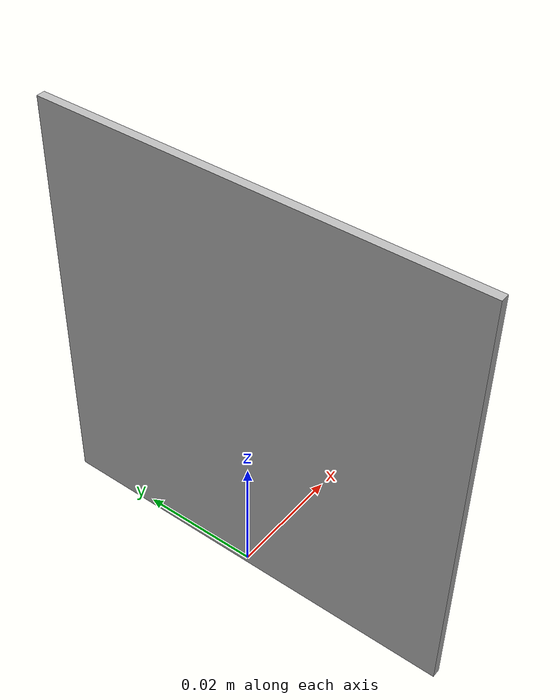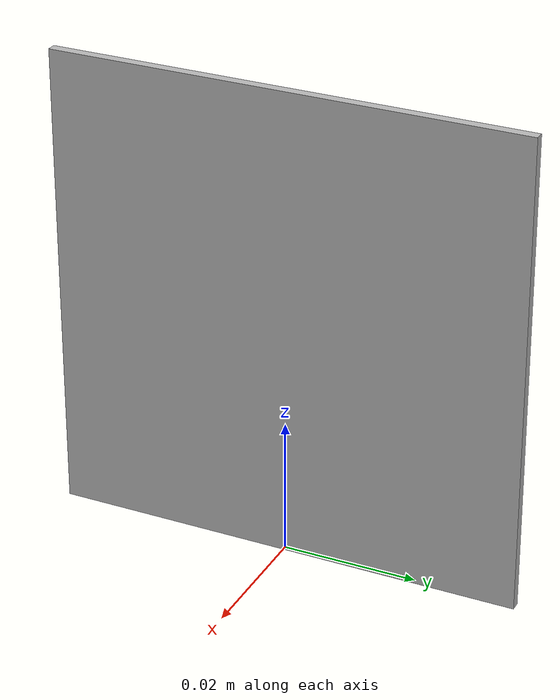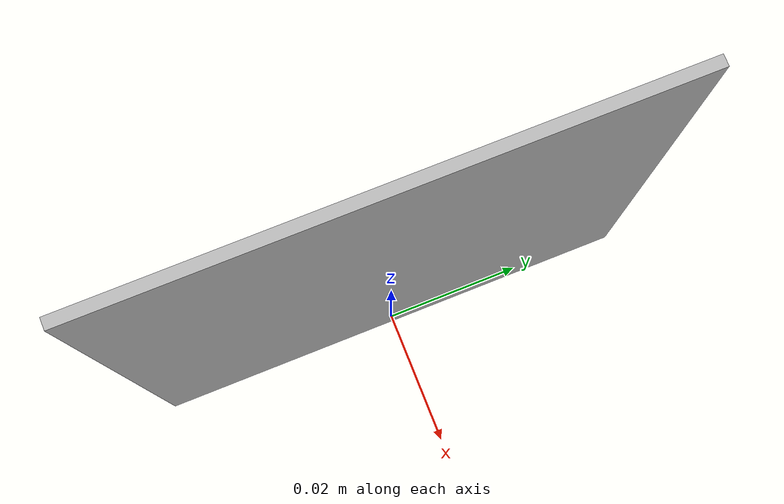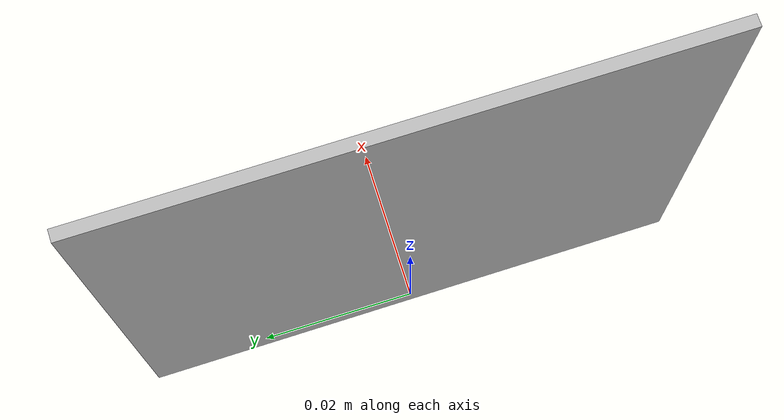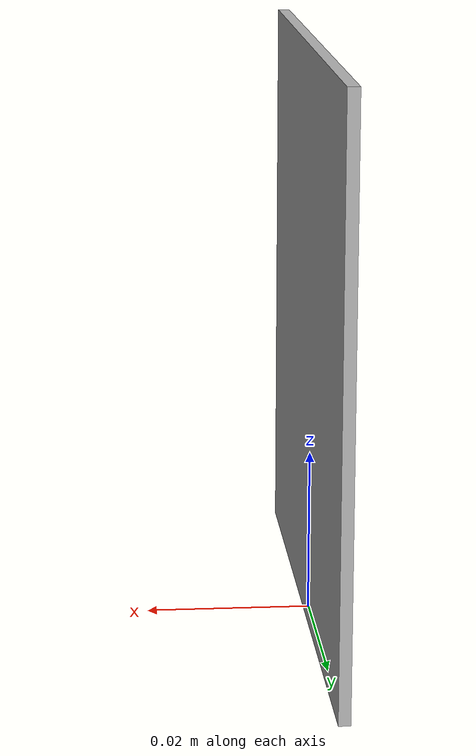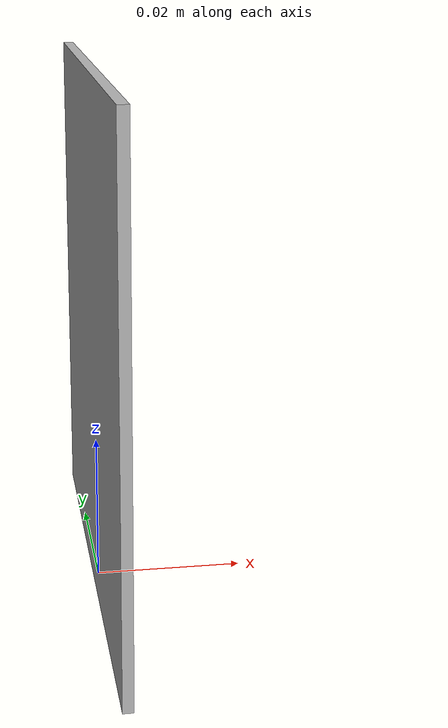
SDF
<?xml version="1.0" ?><sdf version="1.6">
  <model name="Marker12">
    <static>true</static>
    <link name="link">
      <visual name="visual">
        <geometry>
          <mesh>
            <uri>model://marker12/meshes/Marker12.dae</uri>
          <scale>0.14 0.14 0.14</scale></mesh>
        </geometry>
      </visual>
    </link>
  </model>
</sdf>
